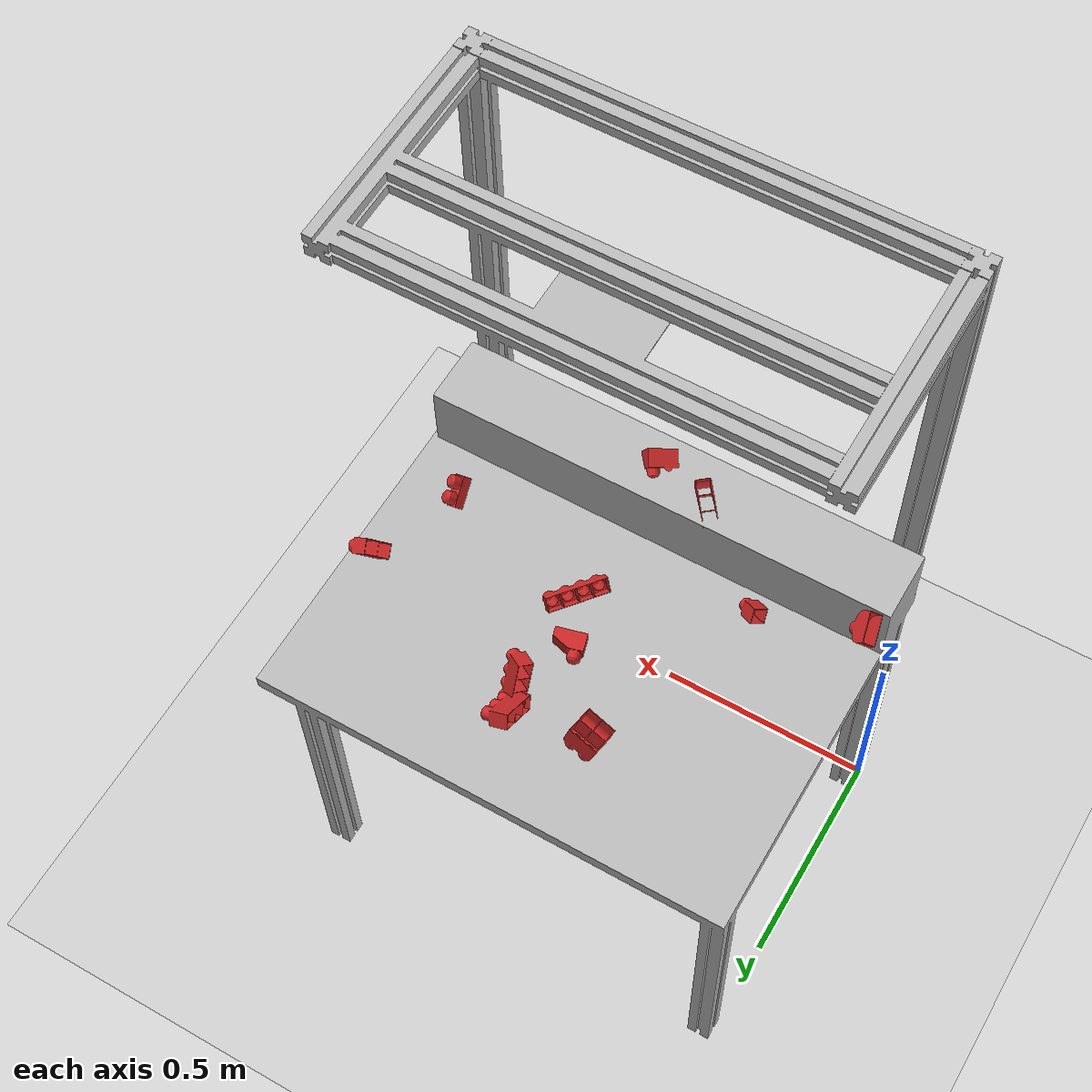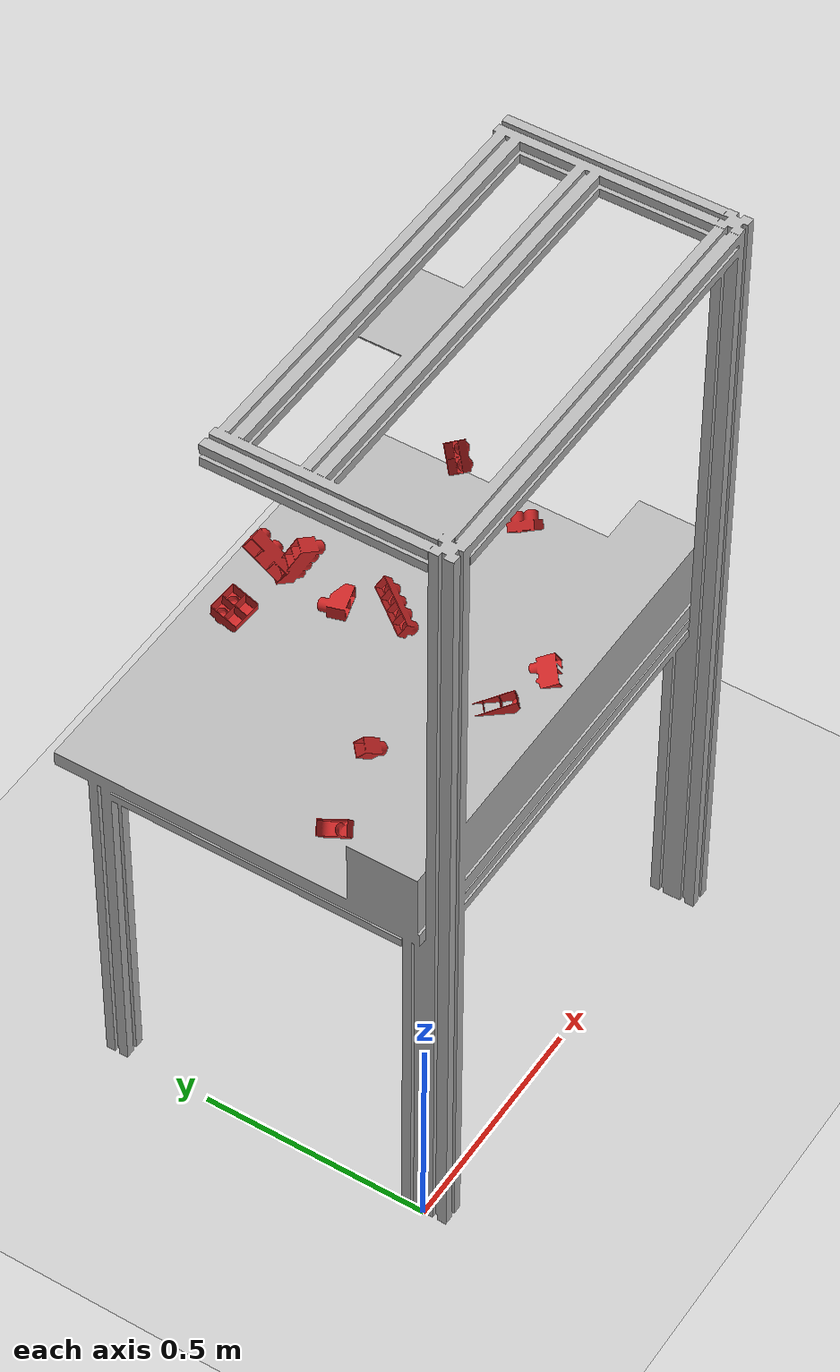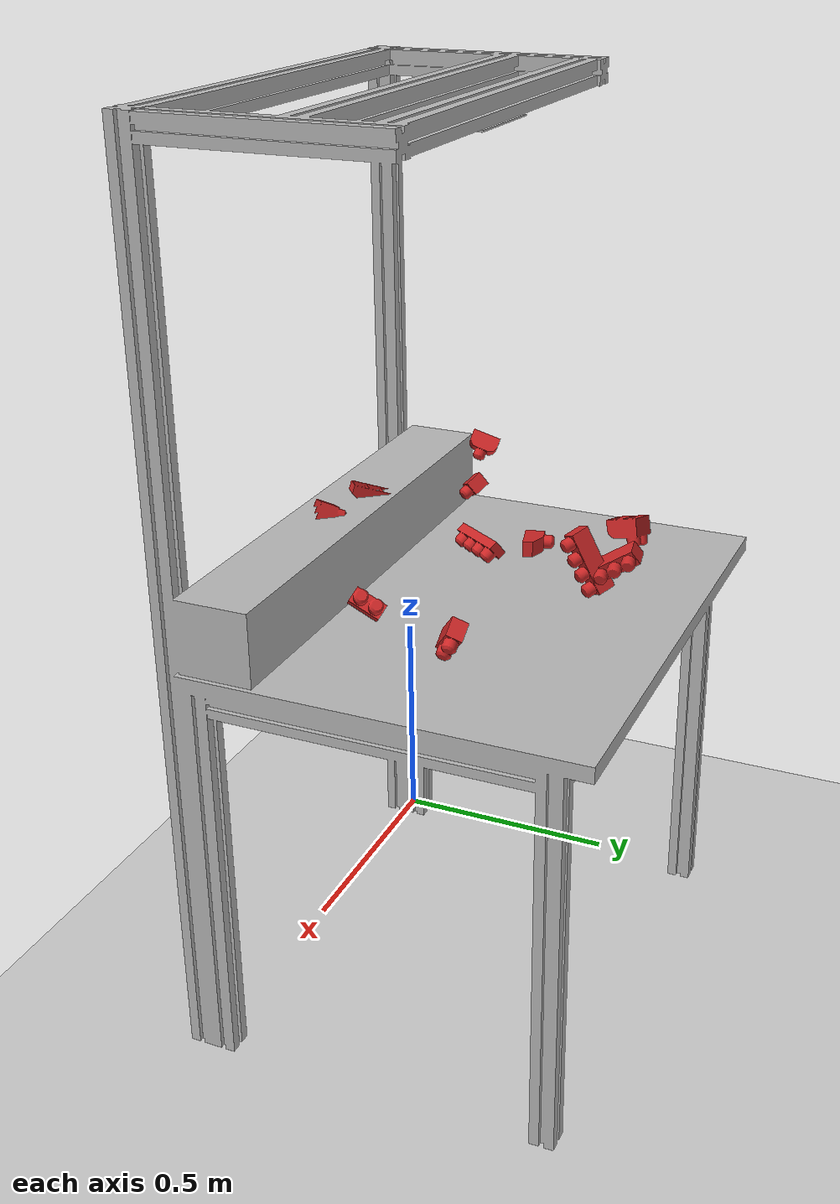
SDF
<?xml version="1.0" ?>
<sdf version="1.4">
  <world name="default">
    <physics type='ode'>
      <gravity>0 0 -9.81</gravity>
      <!-- max step size has to be a multiple of the desired task rate-->
      <max_step_size>0.001</max_step_size>
      <real_time_factor>1</real_time_factor>
    </physics>
    <include>
      <uri>model://sun</uri>
    </include>
    <include>
      <uri>model://ground_plane</uri>
    </include>
    <include>
      <name>tavolo</name>
      <uri>model://tavolo</uri>
      <pose>0.0 0.0 0.0 0 0 0</pose>
    </include>
    <include>
      <name>X1-Y2-Z1</name>
      <uri>model://X1-Y2-Z1</uri>
      <pose>0.840188 0.315506 1 2.46018 2.50837 2.86402</pose>
    </include>
    <include>
      <name>X1-Y1-Z2</name>
      <uri>model://X1-Y1-Z2</uri>
      <pose>0.197551 0.268178 1 2.41346 0.872655 1.74035</pose>
    </include>
    <include>
      <name>X1-Y2-Z2-CHAMFER</name>
      <uri>model://X1-Y2-Z2-CHAMFER</uri>
      <pose>0.477397 0.503097 1 1.146 1.6129 2.99152</pose>
    </include>
    <include>
      <name>X1-Y2-Z2</name>
      <uri>model://X1-Y2-Z2</uri>
      <pose>0.916195 0.508569 1 2.25345 0.444858 1.90685</pose>
    </include>
    <include>
      <name>X1-Y2-Z2-TWINFILLET</name>
      <uri>model://X1-Y2-Z2-TWINFILLET</uri>
      <pose>0.0163006 0.194309 1 0.431126 2.5264 0.492222</pose>
    </include>
    <include>
      <name>X1-Y3-Z2-FILLET</name>
      <uri>model://X1-Y3-Z2-FILLET</uri>
      <pose>0.400944 0.103832 1 0.341833 3.13821 0.685674</pose>
    </include>
    <include>
      <name>X1-Y3-Z2</name>
      <uri>model://X1-Y3-Z2</uri>
      <pose>0.512932 0.67129 1 1.92466 0.930011 2.00293</pose>
    </include>
    <include>
      <name>X1-Y4-Z1</name>
      <uri>model://X1-Y4-Z1</uri>
      <pose>0.524287 0.394866 1 3.05606 0.918969 2.42329</pose>
    </include>
    <include>
      <name>X1-Y4-Z2</name>
      <uri>model://X1-Y4-Z2</uri>
      <pose>0.526745 0.615931 1 1.25736 2.80082 0.890059</pose>
    </include>
    <include>
      <name>X2-Y2-Z2-FILLET</name>
      <uri>model://X2-Y2-Z2-FILLET</uri>
      <pose>0.352458 0.64618 1 2.88721 0.219143 2.9824</pose>
    </include>
    <include>
      <name>X2-Y2-Z2</name>
      <uri>model://X2-Y2-Z2</uri>
      <pose>0.525995 0.0688447 1 0.603858 2.08359 2.79675</pose>
    </include>
    <gui>
    <camera name="gzclient_camera">
      <pose>1. 3.2 2.2 0. 0.4 -1.75</pose>
    </camera>
    </gui>
  </world>
</sdf>

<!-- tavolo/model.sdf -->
<sdf version="1.4">

<physics type="ode">

      <ode>

        <constraints>
          <contact_max_correcting_vel>0.1</contact_max_correcting_vel>
          <contact_surface_layer>0.0001</contact_surface_layer>
        </constraints>
      </ode>
	<max_contacts>10</max_contacts>
	</physics>

	<model name="tavolo">
	    <static>true</static>
		<link name="link">

		     <collision name="base">
			<pose>0.5 0.4 0.85 0 0 0</pose>
			<geometry>
			  <box>
			    <size>1 0.8 0.04</size>
			  </box>
			</geometry>

				<!-- see https://gazebosim.org/tutorials?tut=physics_params&cat=physics-->
				 <surface>
				  <bounce>
				    <restitution_coefficient>0.01</restitution_coefficient>
				    <threshold>5.0</threshold>
				  </bounce>
				  <friction>
				    <ode>
				      <mu>10</mu>
				      <mu2>10</mu2>
				    </ode>
				  </friction>
				  <contact>
				     <ode>
					<max_vel>0.1</max_vel>
					<min_depth>0.001</min_depth>
				        <kp>1000000.0</kp>
					<kd>1000.0</kd>
				      </ode>
			            </contact>
				</surface>

		     	</collision>

	     			<collision name="box">
				<pose>0.5 0.08 0.95 0 0 0</pose>
				<geometry>
				  <box>
				    <size>1 0.15 0.15</size>
				  </box>
				</geometry>

				 <surface>
				  <bounce>
				    <restitution_coefficient>0.01</restitution_coefficient>
				    <threshold>5.0</threshold>
				  </bounce>
				  <friction>
				    <ode>
				      <mu>10</mu>
				      <mu2>10</mu2>
				    </ode>
				  </friction>
				  <contact>
				     <ode>
					<max_vel>0.1</max_vel>
					<min_depth>0.001</min_depth>
				        <kp>1000000.0</kp>
					<kd>1000.0</kd>
				      </ode>
			            </contact>
				</surface>

			      </collision>

			   <collision name="back">
				<pose>0.5 -0.02 1.35 1.57 0 0</pose>
				<geometry>
				  <box>
				    <size>1 1.0 0.04</size>
				  </box>
				</geometry>

				 <surface>
				  <bounce>
				    <restitution_coefficient>0.01</restitution_coefficient>
				    <threshold>5.0</threshold>
				  </bounce>
				  <friction>
				    <ode>
				      <mu>10</mu>
				      <mu2>10</mu2>
				    </ode>
				  </friction>
				  <contact>
				     <ode>
					<max_vel>0.1</max_vel>
					<min_depth>0.001</min_depth>
				        <kp>1000000.0</kp>
					<kd>1000.0</kd>
				      </ode>
			            </contact>
				</surface>

			      </collision>

			<visual name="visual">
				<geometry>
					<mesh>
						<uri>model://tavolo/mesh/tavolo.stl</uri>
                                                <scale>0.001 0.001 0.001</scale>
					</mesh>
				</geometry>
			</visual>
		</link>
	</model>
</sdf>

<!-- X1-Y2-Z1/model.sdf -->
<sdf version="1.4">
  <model name="X1-Y2-Z1">
    <static>false</static>
    <link name="link">
      <pose>0 0 0 0 0 0</pose>
      <inertial>
        <pose>0.000061e-02 0.000456e-02 0.000295e-02 0 0 0</pose>
        <mass>9.916039e-6</mass>
        <inertia>
          <ixx>50.790573e-10</ixx>
          <ixy>0.005056e-10</ixy>
          <ixz>-0.000368e-10</ixz>
          <iyy>23.509121e-10</iyy>
          <iyz>-0.005099e-10</iyz>
          <izz>50.08608e-10</izz>
        </inertia>
      </inertial>

      <visual name="visual">
        <geometry>
          <mesh>
            <uri>model://X1-Y2-Z1/meshes/X1-Y2-Z1.stl</uri>
          </mesh>
        </geometry>
        <material>
          <script>
            <uri>file://media/materials/scripts/gazebo.material</uri>
            <name>Gazebo/Red</name>
          </script>
        </material>
      </visual>

      <collision name="collision">
        <geometry>
          <mesh>
            <uri>model://X1-Y2-Z1/meshes/X1-Y2-Z1.stl</uri>
          </mesh>
        </geometry>
      </collision>
    </link>
  </model>
</sdf>

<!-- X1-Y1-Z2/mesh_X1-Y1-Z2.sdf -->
<sdf version="1.6">

         <model name="mesh_X1-Y1-Z2">
             <static>0</static>
             <self_collide>0</self_collide>
             <allow_auto_disable>1</allow_auto_disable>

             <pose>0 0 0 0 -0 0</pose>

             <link name="link">

                 <gravity>1</gravity>
                 <self_collide>0</self_collide>
                 <kinematic>0</kinematic>

                 <inertial>
                    <!-- Volume:  7.9747940000e-06 -->
                    <mass> 1.0 </mass>

                    <!-- Center of mass:  1.4400000000e-06 -5.0000000000e-08  2.7859970000e-02 -->
                    <pose>  1.4400000000e-06 -5.0000000000e-08  2.7859970000e-02 0 0 0 </pose>

                    <!-- Inertia matrix -->
                    <inertia>
                        <ixx>  3.8954745414e-04 </ixx>
                        <ixy>  3.3856673915e-10 </ixy>
                        <ixz> -3.0082281749e-08 </ixz>
                        <iyy>  3.8955472706e-04 </iyy>
                        <iyz> -2.9217055638e-09 </iyz>
                        <izz>  2.4825571670e-04 </izz>
                    </inertia>
                </inertial>

                 <collision name="collision">
                     <!--
                         Maximum number of contacts allowed between two entities.
                         This value overrides the max_contacts element defined in physics.
                     -->
                     <max_contacts>20</max_contacts>

                    <pose>0 0 0 0 -0 0</pose>

                     <geometry>
                         <mesh>
                             <uri>model://X1-Y1-Z2/mesh/X1-Y1-Z2.stl</uri>
                             <!-- Scaling factor applied to the mesh -->
                             <scale>1.0 1.0 1.0</scale>
                         </mesh>
                     </geometry>
                     <!-- http://sdformat.org/spec?ver=1.6&elem=collision#surface_soft_contact -->
                     <surface></surface>
                 </collision>

                 <visual name="visual">
                     <cast_shadows>1</cast_shadows>
                     <transparency>0</transparency>

                    <pose>0 0 0 0 -0 0</pose>
                     <material>

                         <script>
                             <uri>file://media/materials/scripts/gazebo.material</uri>
                             <name>Gazebo/Red</name>
                         </script>
                         <shader type="vertex">
                           <normal_map>__default__</normal_map>
                         </shader>

                         <lighting>1</lighting>
 		                <ambient>0.15 0.75 0.35 1</ambient>
 		                <diffuse>0.1 0.95 0.25 1</diffuse>
 		                <specular>0.01 0.01 0.01 1</specular>
 		                <emissive>0 0 0 1</emissive>
                     </material>

                     <geometry>
                         <mesh>
                             <uri>model://X1-Y1-Z2/mesh/X1-Y1-Z2.stl</uri>
                             <!-- Scaling factor applied to the mesh -->
                             <scale>1.0 1.0 1.0</scale>
                         </mesh>
                     </geometry>
                 </visual>
             </link>
         </model>
     </sdf>

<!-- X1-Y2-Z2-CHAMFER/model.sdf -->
<sdf version="1.4">
  <model name="X1-Y2-Z2-CHAMFER">
    <static>false</static>
    <link name="link">
      <pose>0 0 0 0 0 0</pose>
      <inertial>
        <pose>0e-02 0.4888e-02 -0.392e-02</pose>
        <mass>11.813372e-6</mass>
        <inertia>
          <ixx>71.14e-10</ixx>
          <ixy>-0.000532e-10</ixy>
          <ixz>-0.001824e-10</ixz>
          <iyy>43.6e-10</iyy>
          <iyz>-10.78e-10</iyz>
          <izz>59.25e-10</izz>
        </inertia>
      </inertial>

      <visual name="visual">
        <geometry>
          <mesh>
            <uri>model://X1-Y2-Z2-CHAMFER/meshes/X1-Y2-Z2-CHAMFER.stl</uri>
          </mesh>
        </geometry>
        <material>
          <script>
            <uri>file://media/materials/scripts/gazebo.material</uri>
            <name>Gazebo/Red</name>
          </script>
        </material>
      </visual>

      <collision name="collision">
        <geometry>
          <mesh>
            <uri>model://X1-Y2-Z2-CHAMFER/meshes/X1-Y2-Z2-CHAMFER.stl</uri>
          </mesh>
        </geometry>
      </collision>
    </link>
  </model>
</sdf>

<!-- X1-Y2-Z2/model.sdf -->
<sdf version="1.4">
  <model name="X1-Y2-Z2">
    <static>false</static>
    <link name="link">
      <pose>0 0 0 0 0 0</pose>
      <inertial>
        <pose>0 0 0.029775e-02 0 0 0</pose>
        <mass>14.626943e-6</mass>
        <inertia>
          <ixx>100.1e-10</ixx>
          <ixy>0.00044e-10</ixy>
          <ixz>-0.0027e-10</ixz>
          <iyy>58.5e-10</iyy>
          <iyz>-0.00236e-10</iyz>
          <izz>79.66e-10</izz>
        </inertia>
      </inertial>

      <visual name="visual">
        <geometry>
          <mesh>
            <uri>model://X1-Y2-Z2/meshes/X1-Y2-Z2.stl</uri>
          </mesh>
        </geometry>
        <material>
          <script>
            <uri>file://media/materials/scripts/gazebo.material</uri>
            <name>Gazebo/Red</name>
          </script>
        </material>
      </visual>

      <collision name="collision">
        <geometry>
          <mesh>
            <uri>model://X1-Y2-Z2/meshes/X1-Y2-Z2.stl</uri>
          </mesh>
        </geometry>
      </collision>
    </link>
  </model>
</sdf>

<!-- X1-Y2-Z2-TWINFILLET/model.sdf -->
<sdf version="1.4">
  <model name="X1-Y2-Z2-TWINFILLET">
    <static>false</static>
    <link name="link">
      <pose>0 0 0 0 0 0</pose>
      <inertial>
        <pose>0e-02 0e-02 -0.2823e-02</pose>
        <mass>11.106e-6</mass>
        <inertia>
          <ixx>69.202e-10</ixx>
          <ixy>-0.0041e-10</ixy>
          <ixz>-0.0007e-10</ixz>
          <iyy>42.507e-10</iyy>
          <iyz>-0.0051e-10</iyz>
          <izz>58.594e-10</izz>
        </inertia>
      </inertial>

      <visual name="visual">
        <geometry>
          <mesh>
            <uri>model://X1-Y2-Z2-TWINFILLET/meshes/X1-Y2-Z2-TWINFILLET.stl</uri>
          </mesh>
        </geometry>
        <material>
          <script>
            <uri>file://media/materials/scripts/gazebo.material</uri>
            <name>Gazebo/Red</name>
          </script>
        </material>
      </visual>

      <collision name="collision">
        <geometry>
          <mesh>
            <uri>model://X1-Y2-Z2-TWINFILLET/meshes/X1-Y2-Z2-TWINFILLET.stl</uri>
          </mesh>
        </geometry>
      </collision>
    </link>
  </model>
</sdf>

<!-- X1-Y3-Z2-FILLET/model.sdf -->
<sdf version="1.4">
  <model name="X1-Y3-Z2-FILLET">
    <static>false</static>
    <link name="link">
      <pose>0 0 0 0 0 0</pose>
      <inertial>
        <pose>0e-02 0.6707e-02 -0.4936e-02</pose>
        <mass>16.4195e-6</mass>
        <inertia>
          <ixx>169.806e-10</ixx>
          <ixy>-0.0027e-10</ixy>
          <ixz>-0.0005e-10</ixz>
          <iyy>57.322e-10</iyy>
          <iyz>-22.714e-10</iyz>
          <izz>158.658e-10</izz>
        </inertia>
      </inertial>

      <visual name="visual">
        <geometry>
          <mesh>
            <uri>model://X1-Y3-Z2-FILLET/meshes/X1-Y3-Z2-FILLET.stl</uri>
          </mesh>
        </geometry>
        <material>
          <script>
            <uri>file://media/materials/scripts/gazebo.material</uri>
            <name>Gazebo/Red</name>
          </script>
        </material>
      </visual>

      <collision name="collision">
        <geometry>
          <mesh>
            <uri>model://X1-Y3-Z2-FILLET/meshes/X1-Y3-Z2-FILLET.stl</uri>
          </mesh>
        </geometry>
      </collision>
    </link>
  </model>
</sdf>

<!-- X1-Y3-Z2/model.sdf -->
<sdf version="1.4">
  <model name="X1-Y3-Z2">
    <static>false</static>
    <link name="link">
      <pose>0 0 0 0 0 0</pose>
      <inertial>
        <pose>0e-02 0e-02 0.06326e-02</pose>
        <mass>21.26222e-6</mass>
        <inertia>
          <ixx>243.707e-10</ixx>
          <ixy>-0.00043e-10</ixy>
          <ixz>-0.00027e-10</ixz>
          <iyy>85.755e-10</iyy>
          <iyz>0.00018e-10</iyz>
          <izz>214.272e-10</izz>
        </inertia>
      </inertial>

      <visual name="visual">
        <geometry>
          <mesh>
            <uri>model://X1-Y3-Z2/meshes/X1-Y3-Z2.stl</uri>
          </mesh>
        </geometry>
        <material>
          <script>
            <uri>file://media/materials/scripts/gazebo.material</uri>
            <name>Gazebo/Red</name>
          </script>
        </material>
      </visual>

      <collision name="collision">
        <geometry>
          <mesh>
            <uri>model://X1-Y3-Z2/meshes/X1-Y3-Z2.stl</uri>
          </mesh>
        </geometry>
      </collision>
    </link>
  </model>
</sdf>

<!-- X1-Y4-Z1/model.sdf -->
<sdf version="1.4">
  <model name="X1-Y4-Z1">
    <static>false</static>
    <link name="link">
      <pose>0 0 0 0 0 0</pose>
      <inertial>
        <pose>0e-02 -0.013e-02 0.028e-02</pose>
        <mass>19.29e-6</mass>
        <inertia>
          <ixx>304.1e-10</ixx>
          <ixy>0.0001e-10</ixy>
          <ixz>0.0004e-10</ixz>
          <iyy>45.92e-10</iyy>
          <iyz>-0.267e-10</iyz>
          <izz>303.17e-10</izz>
        </inertia>
      </inertial>

      <visual name="visual">
        <geometry>
          <mesh>
            <uri>model://X1-Y4-Z1/meshes/X1-Y4-Z1.stl</uri>
          </mesh>
        </geometry>
        <material>
          <script>
            <uri>file://media/materials/scripts/gazebo.material</uri>
            <name>Gazebo/Red</name>
          </script>
        </material>
      </visual>

      <collision name="collision">
        <geometry>
          <mesh>
            <uri>model://X1-Y4-Z1/meshes/X1-Y4-Z1.stl</uri>
          </mesh>
        </geometry>
      </collision>
    </link>
  </model>
</sdf>

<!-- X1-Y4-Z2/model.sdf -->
<sdf version="1.4">
  <model name="X1-Y4-Z2">
    <static>false</static>
    <link name="link">
      <pose>0 0 0 0 0 0</pose>
      <inertial>
        <pose>0e-02 -0.02e-02 0.073e-02</pose>
        <mass>28.118e-6</mass>
        <inertia>
          <ixx>498.05e-10</ixx>
          <ixy>0e-10</ixy>
          <ixz>0.00033e-10</ixz>
          <iyy>113.68e-10</iyy>
          <iyz>-0.584e-10</iyz>
          <izz>459.22e-10</izz>
        </inertia>
      </inertial>

      <visual name="visual">
        <geometry>
          <mesh>
            <uri>model://X1-Y4-Z2/meshes/X1-Y4-Z2.stl</uri>
          </mesh>
        </geometry>
        <material>
          <script>
            <uri>file://media/materials/scripts/gazebo.material</uri>
            <name>Gazebo/Red</name>
          </script>
        </material>
      </visual>

      <collision name="collision">
        <geometry>
          <mesh>
            <uri>model://X1-Y4-Z2/meshes/X1-Y4-Z2.stl</uri>
          </mesh>
        </geometry>
      </collision>
    </link>
  </model>
</sdf>

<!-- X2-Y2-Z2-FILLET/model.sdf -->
<sdf version="1.4">
  <model name="X2-Y2-Z2-FILLET">
    <static>false</static>
    <link name="link">
      <pose>0 0 0 0 0 0</pose>
      <inertial>
        <pose>0.00379e-02 0.35e-02 -0.21e-02</pose>
        <mass>22.336e-6</mass>
        <inertia>
          <ixx>143.8544e-10</ixx>
          <ixy>-0.10468e-10</ixy>
          <ixz>-0.21942e-10</ixz>
          <iyy>151.35e-10</iyy>
          <iyz>-16.18699e-10</iyz>
          <izz>189.6e-10</izz>
        </inertia>
      </inertial>

      <visual name="visual">
        <geometry>
          <mesh>
            <uri>model://X2-Y2-Z2-FILLET/meshes/X2-Y2-Z2-FILLET.stl</uri>
          </mesh>
        </geometry>
        <material>
          <script>
            <uri>file://media/materials/scripts/gazebo.material</uri>
            <name>Gazebo/Red</name>
          </script>
        </material>
      </visual>

      <collision name="collision">
        <geometry>
          <mesh>
            <uri>model://X2-Y2-Z2-FILLET/meshes/X2-Y2-Z2-FILLET.stl</uri>
          </mesh>
        </geometry>
      </collision>
    </link>
  </model>
</sdf>

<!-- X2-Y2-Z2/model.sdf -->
<sdf version="1.4">
  <model name="X2-Y2-Z2">
    <static>false</static>
    <link name="link">
      <pose>0 0 0 0 0 0</pose>
      <inertial>
        <pose>0.0063e-02 0e-02 -0.149e-02</pose>
        <mass>26.42e-6</mass>
        <inertia>
          <ixx>185e-10</ixx>
          <ixy>0.002e-10</ixy>
          <ixz>-0.37e-10</ixz>
          <iyy>185e-10</iyy>
          <iyz>0.003e-10</iyz>
          <izz>225.8e-10</izz>
        </inertia>
      </inertial>

      <visual name="visual">
        <geometry>
          <mesh>
            <uri>model://X2-Y2-Z2/meshes/X2-Y2-Z2.stl</uri>
          </mesh>
        </geometry>
        <material>
          <script>
            <uri>file://media/materials/scripts/gazebo.material</uri>
            <name>Gazebo/Red</name>
          </script>
        </material>
      </visual>

      <collision name="collision">
        <geometry>
          <mesh>
            <uri>model://X2-Y2-Z2/meshes/X2-Y2-Z2.stl</uri>
          </mesh>
        </geometry>
      </collision>
    </link>
  </model>
</sdf>
